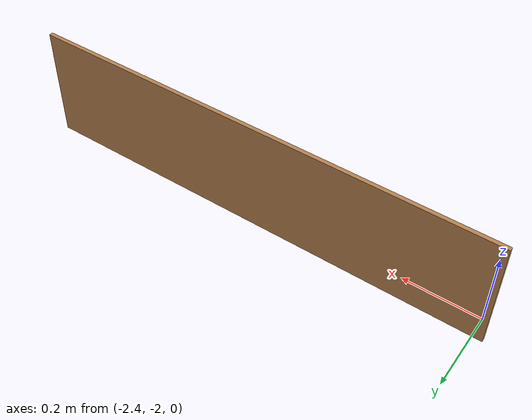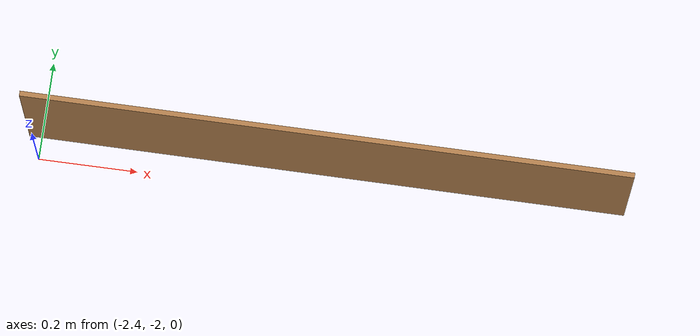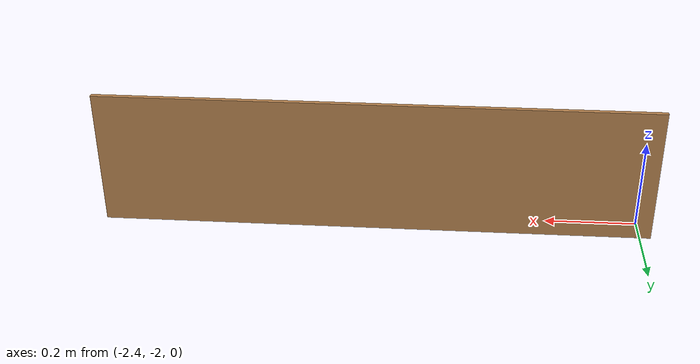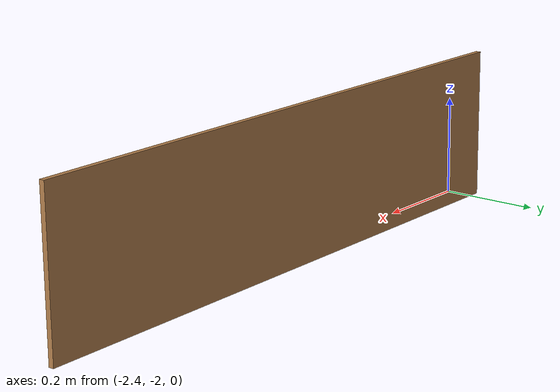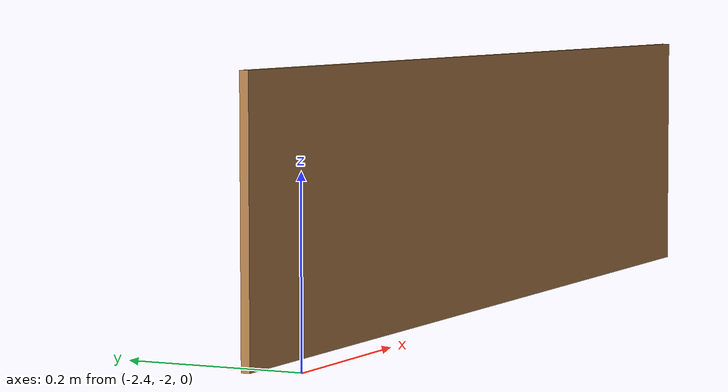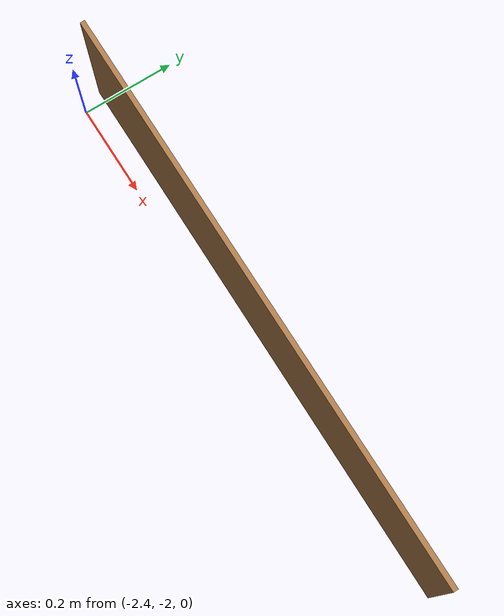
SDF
<?xml version='1.0'?>
<sdf version='1.7'>
  <model name='wood_1_2m'>
    <pose>-1.2125 -0.9775 0 0 -0 0</pose>
    <link name='Wall_0'>
      <collision name='Wall_0_Collision'>
        <geometry>
          <box>
            <size>1.2 0.01 0.3</size>
          </box>
        </geometry>
        <pose>0 0 0.15 0 -0 0</pose>
      </collision>
      <visual name='Wall_0_Visual'>
        <pose>0 0 0.15 0 -0 0</pose>
        <geometry>
          <box>
            <size>1.2 0.01 0.3</size>
          </box>
        </geometry>
        <material>
          <script>
            <uri>file://media/materials/scripts/gazebo.material</uri>
            <name>Gazebo/Wood</name>
          </script>
          <ambient>1 1 1 1</ambient>
        </material>
        <meta>
          <layer>0</layer>
        </meta>
      </visual>
      <pose>-0.6125 -0.9725 0 0 -0 0</pose>
    </link>
    <static>1</static>
  </model>
</sdf>
